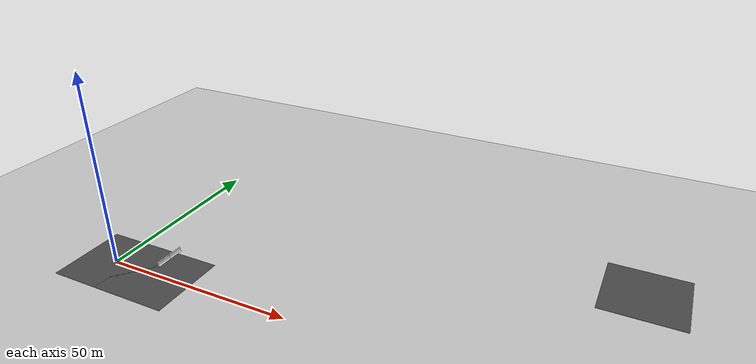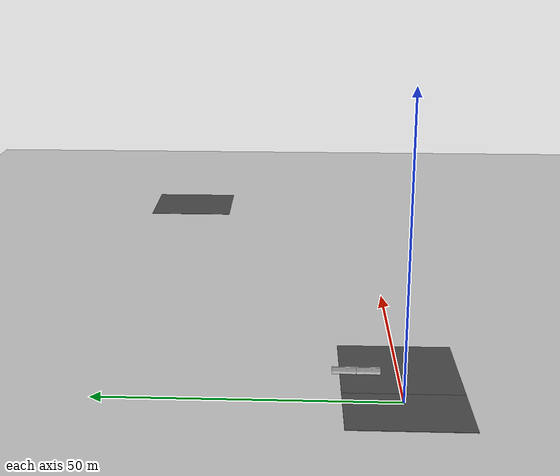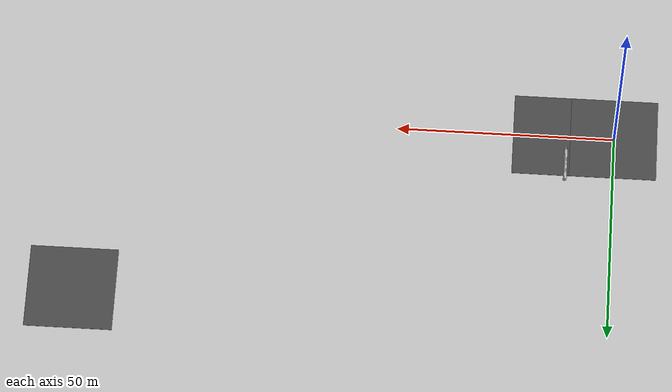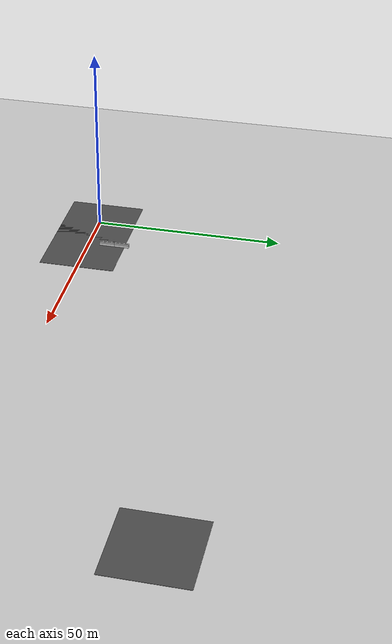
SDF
<sdf version="1.7">
 <world name="default">
  <model name="ground_plane">
   <static>1</static>
   <link name="link">
    <collision name="collision">
     <geometry><plane><normal>0 0 1</normal><size>100 100</size></plane></geometry>
     <surface><friction><ode><mu>100</mu><mu2>50</mu2></ode></friction></surface>
    </collision>
    <visual name="visual">
     <cast_shadows>0</cast_shadows>
     <geometry><plane><normal>0 0 1</normal><size>100 100</size></plane></geometry>
     <material>
      <script><uri>file://media/materials/scripts/gazebo.material</uri><name>Gazebo/Grey</name></script>
     </material>
    </visual>
    <velocity_decay><linear>0</linear><angular>0</angular></velocity_decay>
   </link>
  </model>
  <model name="asphalt_plane">
   <static>1</static>
   <link name="link">
    <collision name="collision"><geometry><box><size>20 20 0.1</size></box></geometry></collision>
    <visual name="visual">
     <cast_shadows>0</cast_shadows>
     <geometry><box><size>20 20 0.1</size></box></geometry>
     <material>
      <script>
       <uri>model://asphalt_plane/materials/scripts</uri>
       <uri>model://asphalt_plane/materials/textures</uri>
       <name>vrc/asphalt</name>
      </script>
     </material>
    </visual>
    <velocity_decay><linear>0</linear><angular>0</angular></velocity_decay>
   </link>
   <pose>0.125329 -0.243752 0 0 -0 0</pose>
  </model>
  <model name="asphalt_plane_clone">
   <static>1</static>
   <link name="link">
    <collision name="collision"><geometry><box><size>20 20 0.1</size></box></geometry></collision>
    <visual name="visual">
     <cast_shadows>0</cast_shadows>
     <geometry><box><size>20 20 0.1</size></box></geometry>
     <material>
      <script>
       <uri>model://asphalt_plane/materials/scripts</uri>
       <uri>model://asphalt_plane/materials/textures</uri>
       <name>vrc/asphalt</name>
      </script>
     </material>
    </visual>
    <velocity_decay><linear>0</linear><angular>0</angular></velocity_decay>
   </link>
   <pose>121.517 44.7202 0 0 -0 0</pose>
  </model>
  <model name="asphalt_plane_clone_1">
   <static>1</static>
   <link name="link">
    <collision name="collision"><geometry><box><size>20 20 0.1</size></box></geometry></collision>
    <visual name="visual">
     <cast_shadows>0</cast_shadows>
     <geometry><box><size>20 20 0.1</size></box></geometry>
     <material>
      <script>
       <uri>model://asphalt_plane/materials/scripts</uri>
       <uri>model://asphalt_plane/materials/textures</uri>
       <name>vrc/asphalt</name>
      </script>
     </material>
    </visual>
    <velocity_decay><linear>0</linear><angular>0</angular></velocity_decay>
   </link>
   <pose>13.2342 -0.228778 0 0 -0 0</pose>
  </model>
  <model name="jersey_barrier_15_clone_clone_clone_1_clone_0">
   <static>1</static>
   <link name="link">
    <visual name="visual">
     <geometry><mesh><uri>model://jersey_barrier/meshes/jersey_barrier.dae</uri></mesh></geometry>
    </visual>
    <collision name="upright">
     <pose>0 0 0.5715 0 -0 0</pose>
     <geometry><box><size>4.06542 0.3063 1.143</size></box></geometry>
    </collision>
    <collision name="base">
     <pose>0 0 0.032258 0 -0 0</pose>
     <geometry><box><size>4.06542 0.8107 0.064516</size></box></geometry>
    </collision>
    <collision name="base2">
     <pose>0 0 0.1 0 -0 0</pose>
     <geometry><box><size>4.06542 0.65 0.1</size></box></geometry>
    </collision>
    <collision name="base3">
     <pose>0 0 0.2 0 -0 0</pose>
     <geometry><box><size>4.06542 0.5 0.1</size></box></geometry>
    </collision>
    <collision name="left-angle">
     <pose>0 -0.224 0.2401 0.9 -0 0</pose>
     <geometry><box><size>4.06542 0.5 0.064516</size></box></geometry>
    </collision>
    <collision name="right-angle">
     <pose>0 0.224 0.2401 -0.9 0 0</pose>
     <geometry><box><size>4.06542 0.5 0.064516</size></box></geometry>
    </collision>
    <velocity_decay><linear>0</linear><angular>0</angular></velocity_decay>
   </link>
   <pose>10.989 4.97415 0.055108 0 0 -1.57345</pose>
  </model>
  <model name="jersey_barrier_15_clone_clone_clone_1_clone_0_clone">
   <link name="link">
    <velocity_decay><linear>0</linear><angular>0</angular></velocity_decay>
    <visual name="visual">
     <geometry><mesh><uri>model://jersey_barrier/meshes/jersey_barrier.dae</uri></mesh></geometry>
     <material><shader type="pixel"/></material>
    </visual>
    <collision name="upright">
     <pose>0 0 0.5715 0 -0 0</pose>
     <geometry><box><size>4.06542 0.3063 1.143</size></box></geometry>
     <surface>
      <friction>
       <ode><mu>1</mu><mu2>1</mu2><fdir1>0 0 0</fdir1><slip1>0</slip1><slip2>0</slip2></ode>
       <torsional>
        <coefficient>1</coefficient>
        <patch_radius>0</patch_radius>
        <surface_radius>0</surface_radius>
        <use_patch_radius>1</use_patch_radius>
        <ode><slip>0</slip></ode>
       </torsional>
      </friction>
      <bounce><restitution_coefficient>0</restitution_coefficient><threshold>1e+06</threshold></bounce>
      <contact>
       <collide_without_contact>0</collide_without_contact>
       <collide_without_contact_bitmask>1</collide_without_contact_bitmask>
       <collide_bitmask>1</collide_bitmask>
       <ode>
        <soft_cfm>0</soft_cfm>
        <soft_erp>0.2</soft_erp>
        <kp>1e+13</kp>
        <kd>1</kd>
        <max_vel>0.01</max_vel>
        <min_depth>0</min_depth>
       </ode>
       <bullet>
        <split_impulse>1</split_impulse>
        <split_impulse_penetration_threshold>-0.01</split_impulse_penetration_threshold>
        <soft_cfm>0</soft_cfm>
        <soft_erp>0.2</soft_erp>
        <kp>1e+13</kp>
        <kd>1</kd>
       </bullet>
      </contact>
     </surface>
    </collision>
    <collision name="base">
     <pose>0 0 0.032258 0 -0 0</pose>
     <geometry><box><size>4.06542 0.8107 0.064516</size></box></geometry>
     <surface>
      <friction>
       <ode><mu>1</mu><mu2>1</mu2><fdir1>0 0 0</fdir1><slip1>0</slip1><slip2>0</slip2></ode>
       <torsional>
        <coefficient>1</coefficient>
        <patch_radius>0</patch_radius>
        <surface_radius>0</surface_radius>
        <use_patch_radius>1</use_patch_radius>
        <ode><slip>0</slip></ode>
       </torsional>
      </friction>
      <bounce><restitution_coefficient>0</restitution_coefficient><threshold>1e+06</threshold></bounce>
      <contact>
       <collide_without_contact>0</collide_without_contact>
       <collide_without_contact_bitmask>1</collide_without_contact_bitmask>
       <collide_bitmask>1</collide_bitmask>
       <ode>
        <soft_cfm>0</soft_cfm>
        <soft_erp>0.2</soft_erp>
        <kp>1e+13</kp>
        <kd>1</kd>
        <max_vel>0.01</max_vel>
        <min_depth>0</min_depth>
       </ode>
       <bullet>
        <split_impulse>1</split_impulse>
        <split_impulse_penetration_threshold>-0.01</split_impulse_penetration_threshold>
        <soft_cfm>0</soft_cfm>
        <soft_erp>0.2</soft_erp>
        <kp>1e+13</kp>
        <kd>1</kd>
       </bullet>
      </contact>
     </surface>
    </collision>
    <collision name="base3">
     <pose>0 0 0.2 0 -0 0</pose>
     <geometry><box><size>4.06542 0.5 0.1</size></box></geometry>
     <surface>
      <friction>
       <ode><mu>1</mu><mu2>1</mu2><fdir1>0 0 0</fdir1><slip1>0</slip1><slip2>0</slip2></ode>
       <torsional>
        <coefficient>1</coefficient>
        <patch_radius>0</patch_radius>
        <surface_radius>0</surface_radius>
        <use_patch_radius>1</use_patch_radius>
        <ode><slip>0</slip></ode>
       </torsional>
      </friction>
      <bounce><restitution_coefficient>0</restitution_coefficient><threshold>1e+06</threshold></bounce>
      <contact>
       <collide_without_contact>0</collide_without_contact>
       <collide_without_contact_bitmask>1</collide_without_contact_bitmask>
       <collide_bitmask>1</collide_bitmask>
       <ode>
        <soft_cfm>0</soft_cfm>
        <soft_erp>0.2</soft_erp>
        <kp>1e+13</kp>
        <kd>1</kd>
        <max_vel>0.01</max_vel>
        <min_depth>0</min_depth>
       </ode>
       <bullet>
        <split_impulse>1</split_impulse>
        <split_impulse_penetration_threshold>-0.01</split_impulse_penetration_threshold>
        <soft_cfm>0</soft_cfm>
        <soft_erp>0.2</soft_erp>
        <kp>1e+13</kp>
        <kd>1</kd>
       </bullet>
      </contact>
     </surface>
    </collision>
    <collision name="base2">
     <pose>0 0 0.1 0 -0 0</pose>
     <geometry><box><size>4.06542 0.65 0.1</size></box></geometry>
     <surface>
      <friction>
       <ode><mu>1</mu><mu2>1</mu2><fdir1>0 0 0</fdir1><slip1>0</slip1><slip2>0</slip2></ode>
       <torsional>
        <coefficient>1</coefficient>
        <patch_radius>0</patch_radius>
        <surface_radius>0</surface_radius>
        <use_patch_radius>1</use_patch_radius>
        <ode><slip>0</slip></ode>
       </torsional>
      </friction>
      <bounce><restitution_coefficient>0</restitution_coefficient><threshold>1e+06</threshold></bounce>
      <contact>
       <collide_without_contact>0</collide_without_contact>
       <collide_without_contact_bitmask>1</collide_without_contact_bitmask>
       <collide_bitmask>1</collide_bitmask>
       <ode>
        <soft_cfm>0</soft_cfm>
        <soft_erp>0.2</soft_erp>
        <kp>1e+13</kp>
        <kd>1</kd>
        <max_vel>0.01</max_vel>
        <min_depth>0</min_depth>
       </ode>
       <bullet>
        <split_impulse>1</split_impulse>
        <split_impulse_penetration_threshold>-0.01</split_impulse_penetration_threshold>
        <soft_cfm>0</soft_cfm>
        <soft_erp>0.2</soft_erp>
        <kp>1e+13</kp>
        <kd>1</kd>
       </bullet>
      </contact>
     </surface>
    </collision>
    <collision name="left-angle">
     <pose>0 -0.224 0.2401 0.9 -0 0</pose>
     <geometry><box><size>4.06542 0.5 0.064516</size></box></geometry>
     <surface>
      <friction>
       <ode><mu>1</mu><mu2>1</mu2><fdir1>0 0 0</fdir1><slip1>0</slip1><slip2>0</slip2></ode>
       <torsional>
        <coefficient>1</coefficient>
        <patch_radius>0</patch_radius>
        <surface_radius>0</surface_radius>
        <use_patch_radius>1</use_patch_radius>
        <ode><slip>0</slip></ode>
       </torsional>
      </friction>
      <bounce><restitution_coefficient>0</restitution_coefficient><threshold>1e+06</threshold></bounce>
      <contact>
       <collide_without_contact>0</collide_without_contact>
       <collide_without_contact_bitmask>1</collide_without_contact_bitmask>
       <collide_bitmask>1</collide_bitmask>
       <ode>
        <soft_cfm>0</soft_cfm>
        <soft_erp>0.2</soft_erp>
        <kp>1e+13</kp>
        <kd>1</kd>
        <max_vel>0.01</max_vel>
        <min_depth>0</min_depth>
       </ode>
       <bullet>
        <split_impulse>1</split_impulse>
        <split_impulse_penetration_threshold>-0.01</split_impulse_penetration_threshold>
        <soft_cfm>0</soft_cfm>
        <soft_erp>0.2</soft_erp>
        <kp>1e+13</kp>
        <kd>1</kd>
       </bullet>
      </contact>
     </surface>
    </collision>
    <collision name="right-angle">
     <pose>0 0.224 0.2401 -0.9 0 0</pose>
     <geometry><box><size>4.06542 0.5 0.064516</size></box></geometry>
     <surface>
      <friction>
       <ode><mu>1</mu><mu2>1</mu2><fdir1>0 0 0</fdir1><slip1>0</slip1><slip2>0</slip2></ode>
       <torsional>
        <coefficient>1</coefficient>
        <patch_radius>0</patch_radius>
        <surface_radius>0</surface_radius>
        <use_patch_radius>1</use_patch_radius>
        <ode><slip>0</slip></ode>
       </torsional>
      </friction>
      <bounce><restitution_coefficient>0</restitution_coefficient><threshold>1e+06</threshold></bounce>
      <contact>
       <collide_without_contact>0</collide_without_contact>
       <collide_without_contact_bitmask>1</collide_without_contact_bitmask>
       <collide_bitmask>1</collide_bitmask>
       <ode>
        <soft_cfm>0</soft_cfm>
        <soft_erp>0.2</soft_erp>
        <kp>1e+13</kp>
        <kd>1</kd>
        <max_vel>0.01</max_vel>
        <min_depth>0</min_depth>
       </ode>
       <bullet>
        <split_impulse>1</split_impulse>
        <split_impulse_penetration_threshold>-0.01</split_impulse_penetration_threshold>
        <soft_cfm>0</soft_cfm>
        <soft_erp>0.2</soft_erp>
        <kp>1e+13</kp>
        <kd>1</kd>
       </bullet>
      </contact>
     </surface>
    </collision>
   </link>
   <static>1</static>
   <pose>11.0045 9.05182 0.055108 0 0 -1.57345</pose>
  </model>
 </world>
</sdf>
